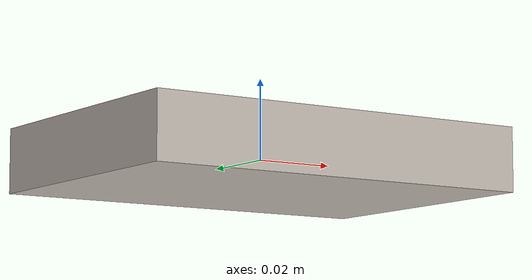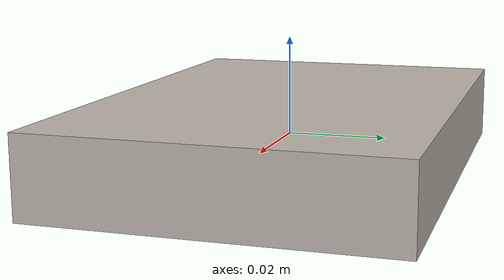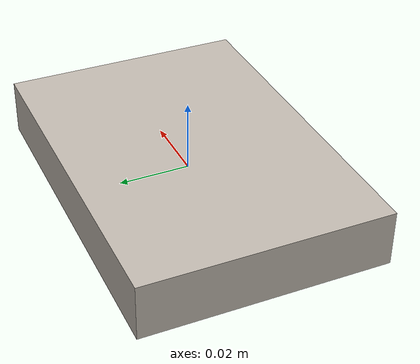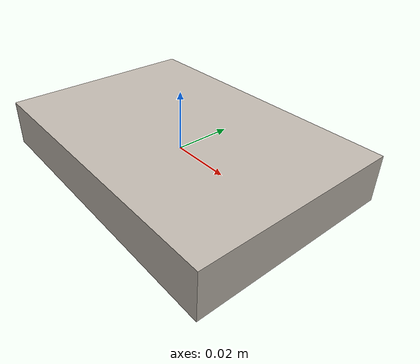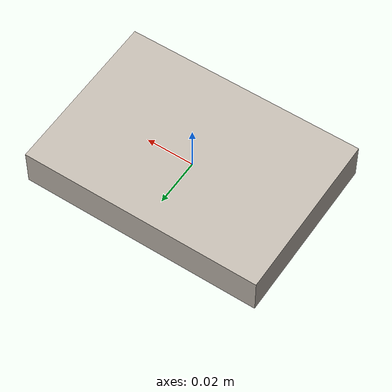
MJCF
<mujoco model="vla82_vla82_052__aux_01">
  <compiler angle="radian"/>
  <asset>
    <texture name="source_texture" type="2d" file="source_texture.png"/>
    <material name="source_material" texture="source_texture" rgba="1 1 1 1"/>
  </asset>
  <default>
    <default class="visual"><geom contype="0" conaffinity="0" group="1"/></default>
    <default class="collision"><geom contype="1" conaffinity="1" group="0" density="300" friction="0.55 0.005 0.0002" solref="0.02 1" solimp="0.9 0.95 0.001"/></default>
    <default class="region"><geom contype="0" conaffinity="0" group="1" rgba="0 1 0 0" mass="0"/></default>
  </default>
  <worldbody><body><body name="object">
    <geom name="visual" class="visual" type="box" size="0.050000 0.035000 0.008000" material="source_material"/>
    <geom name="collision" class="collision" type="box" size="0.050000 0.035000 0.008000"/>
    <geom name="reg_bbox" class="region" type="box" pos="0 0 0" size="0.050000 0.035000 0.008000"/>
  </body></body></worldbody>
  <actuator/>
</mujoco>
